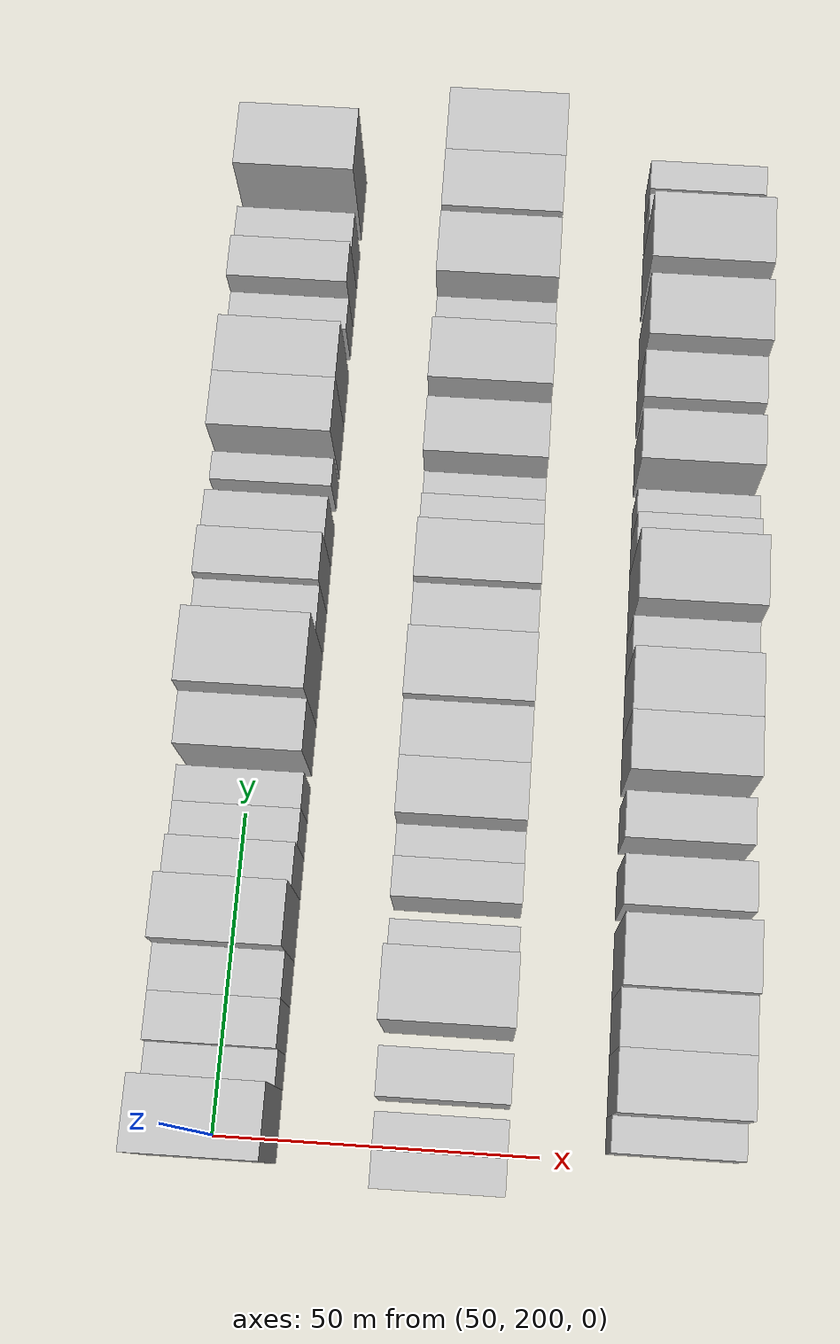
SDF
<sdf version="1.6">
 <world name="default">
  <model name="building_60">
   <static>1</static>
   <pose>50.0000 201.9359 0 0.000000 0.000000 0.000000</pose>
   <link name="link">
    <pose>0 0 12.00 0 0 0</pose>
    <collision name="collision"><geometry><box><size>20.0000 10.8828 24.0000</size></box></geometry></collision>
    <visual name="visual">
     <cast_shadows>0</cast_shadows>
     <geometry><box><size>20.0000 10.8828 24.0000</size></box></geometry>
     <material>
      <script>
       <uri>model://HANNAS_wall/materials/scripts</uri>
       <uri>model://HANNAS_wall/materials/textures</uri>
       <name>vrc/HANNAS_wall</name>
      </script>
     </material>
    </visual>
   </link>
  </model>
  <model name="building_61">
   <static>1</static>
   <pose>50.0000 210.0029 0 0.000000 0.000000 0.000000</pose>
   <link name="link">
    <pose>0 0 6.00 0 0 0</pose>
    <collision name="collision"><geometry><box><size>20.0000 5.2511 12.0000</size></box></geometry></collision>
    <visual name="visual">
     <cast_shadows>0</cast_shadows>
     <geometry><box><size>20.0000 5.2511 12.0000</size></box></geometry>
     <material>
      <script>
       <uri>model://HANNAS_wall/materials/scripts</uri>
       <uri>model://HANNAS_wall/materials/textures</uri>
       <name>vrc/HANNAS_wall</name>
      </script>
     </material>
    </visual>
   </link>
  </model>
  <model name="building_62">
   <static>1</static>
   <pose>50.0000 216.2365 0 0.000000 0.000000 0.000000</pose>
   <link name="link">
    <pose>0 0 7.50 0 0 0</pose>
    <collision name="collision"><geometry><box><size>20.0000 7.2160 15.0000</size></box></geometry></collision>
    <visual name="visual">
     <cast_shadows>0</cast_shadows>
     <geometry><box><size>20.0000 7.2160 15.0000</size></box></geometry>
     <material>
      <script>
       <uri>model://HANNAS_wall/materials/scripts</uri>
       <uri>model://HANNAS_wall/materials/textures</uri>
       <name>vrc/HANNAS_wall</name>
      </script>
     </material>
    </visual>
   </link>
  </model>
  <model name="building_63">
   <static>1</static>
   <pose>50.0000 223.3515 0 0.000000 0.000000 0.000000</pose>
   <link name="link">
    <pose>0 0 7.50 0 0 0</pose>
    <collision name="collision"><geometry><box><size>20.0000 7.0141 15.0000</size></box></geometry></collision>
    <visual name="visual">
     <cast_shadows>0</cast_shadows>
     <geometry><box><size>20.0000 7.0141 15.0000</size></box></geometry>
     <material>
      <script>
       <uri>model://HANNAS_wall/materials/scripts</uri>
       <uri>model://HANNAS_wall/materials/textures</uri>
       <name>vrc/HANNAS_wall</name>
      </script>
     </material>
    </visual>
   </link>
  </model>
  <model name="building_64">
   <static>1</static>
   <pose>50.0000 231.7154 0 0.000000 0.000000 0.000000</pose>
   <link name="link">
    <pose>0 0 10.50 0 0 0</pose>
    <collision name="collision"><geometry><box><size>20.0000 9.7138 21.0000</size></box></geometry></collision>
    <visual name="visual">
     <cast_shadows>0</cast_shadows>
     <geometry><box><size>20.0000 9.7138 21.0000</size></box></geometry>
     <material>
      <script>
       <uri>model://HANNAS_wall/materials/scripts</uri>
       <uri>model://HANNAS_wall/materials/textures</uri>
       <name>vrc/HANNAS_wall</name>
      </script>
     </material>
    </visual>
   </link>
  </model>
  <model name="building_65">
   <static>1</static>
   <pose>50.0000 239.9310 0 0.000000 0.000000 0.000000</pose>
   <link name="link">
    <pose>0 0 7.50 0 0 0</pose>
    <collision name="collision"><geometry><box><size>20.0000 6.7175 15.0000</size></box></geometry></collision>
    <visual name="visual">
     <cast_shadows>0</cast_shadows>
     <geometry><box><size>20.0000 6.7175 15.0000</size></box></geometry>
     <material>
      <script>
       <uri>model://HANNAS_wall/materials/scripts</uri>
       <uri>model://HANNAS_wall/materials/textures</uri>
       <name>vrc/HANNAS_wall</name>
      </script>
     </material>
    </visual>
   </link>
  </model>
  <model name="building_66">
   <static>1</static>
   <pose>50.0000 246.1972 0 0.000000 0.000000 0.000000</pose>
   <link name="link">
    <pose>0 0 6.00 0 0 0</pose>
    <collision name="collision"><geometry><box><size>20.0000 5.8149 12.0000</size></box></geometry></collision>
    <visual name="visual">
     <cast_shadows>0</cast_shadows>
     <geometry><box><size>20.0000 5.8149 12.0000</size></box></geometry>
     <material>
      <script>
       <uri>model://HANNAS_wall/materials/scripts</uri>
       <uri>model://HANNAS_wall/materials/textures</uri>
       <name>vrc/HANNAS_wall</name>
      </script>
     </material>
    </visual>
   </link>
  </model>
  <model name="building_67">
   <static>1</static>
   <pose>50.0000 251.9411 0 0.000000 0.000000 0.000000</pose>
   <link name="link">
    <pose>0 0 6.00 0 0 0</pose>
    <collision name="collision"><geometry><box><size>20.0000 5.6728 12.0000</size></box></geometry></collision>
    <visual name="visual">
     <cast_shadows>0</cast_shadows>
     <geometry><box><size>20.0000 5.6728 12.0000</size></box></geometry>
     <material>
      <script>
       <uri>model://HANNAS_wall/materials/scripts</uri>
       <uri>model://HANNAS_wall/materials/textures</uri>
       <name>vrc/HANNAS_wall</name>
      </script>
     </material>
    </visual>
   </link>
  </model>
  <model name="building_68">
   <static>1</static>
   <pose>50.0000 260.9526 0 0.000000 0.000000 0.000000</pose>
   <link name="link">
    <pose>0 0 9.00 0 0 0</pose>
    <collision name="collision"><geometry><box><size>20.0000 8.3503 18.0000</size></box></geometry></collision>
    <visual name="visual">
     <cast_shadows>0</cast_shadows>
     <geometry><box><size>20.0000 8.3503 18.0000</size></box></geometry>
     <material>
      <script>
       <uri>model://HANNAS_wall/materials/scripts</uri>
       <uri>model://HANNAS_wall/materials/textures</uri>
       <name>vrc/HANNAS_wall</name>
      </script>
     </material>
    </visual>
   </link>
  </model>
  <model name="building_69">
   <static>1</static>
   <pose>50.0000 271.1112 0 0.000000 0.000000 0.000000</pose>
   <link name="link">
    <pose>0 0 12.00 0 0 0</pose>
    <collision name="collision"><geometry><box><size>20.0000 11.9669 24.0000</size></box></geometry></collision>
    <visual name="visual">
     <cast_shadows>0</cast_shadows>
     <geometry><box><size>20.0000 11.9669 24.0000</size></box></geometry>
     <material>
      <script>
       <uri>model://HANNAS_wall/materials/scripts</uri>
       <uri>model://HANNAS_wall/materials/textures</uri>
       <name>vrc/HANNAS_wall</name>
      </script>
     </material>
    </visual>
   </link>
  </model>
  <model name="building_70">
   <static>1</static>
   <pose>50.0000 280.7598 0 0.000000 0.000000 0.000000</pose>
   <link name="link">
    <pose>0 0 7.50 0 0 0</pose>
    <collision name="collision"><geometry><box><size>20.0000 7.3303 15.0000</size></box></geometry></collision>
    <visual name="visual">
     <cast_shadows>0</cast_shadows>
     <geometry><box><size>20.0000 7.3303 15.0000</size></box></geometry>
     <material>
      <script>
       <uri>model://HANNAS_wall/materials/scripts</uri>
       <uri>model://HANNAS_wall/materials/textures</uri>
       <name>vrc/HANNAS_wall</name>
      </script>
     </material>
    </visual>
   </link>
  </model>
  <model name="building_71">
   <static>1</static>
   <pose>50.0000 288.3736 0 0.000000 0.000000 0.000000</pose>
   <link name="link">
    <pose>0 0 9.00 0 0 0</pose>
    <collision name="collision"><geometry><box><size>20.0000 7.8973 18.0000</size></box></geometry></collision>
    <visual name="visual">
     <cast_shadows>0</cast_shadows>
     <geometry><box><size>20.0000 7.8973 18.0000</size></box></geometry>
     <material>
      <script>
       <uri>model://HANNAS_wall/materials/scripts</uri>
       <uri>model://HANNAS_wall/materials/textures</uri>
       <name>vrc/HANNAS_wall</name>
      </script>
     </material>
    </visual>
   </link>
  </model>
  <model name="building_72">
   <static>1</static>
   <pose>50.0000 295.9462 0 0.000000 0.000000 0.000000</pose>
   <link name="link">
    <pose>0 0 7.50 0 0 0</pose>
    <collision name="collision"><geometry><box><size>20.0000 7.2479 15.0000</size></box></geometry></collision>
    <visual name="visual">
     <cast_shadows>0</cast_shadows>
     <geometry><box><size>20.0000 7.2479 15.0000</size></box></geometry>
     <material>
      <script>
       <uri>model://HANNAS_wall/materials/scripts</uri>
       <uri>model://HANNAS_wall/materials/textures</uri>
       <name>vrc/HANNAS_wall</name>
      </script>
     </material>
    </visual>
   </link>
  </model>
  <model name="building_73">
   <static>1</static>
   <pose>50.0000 305.0098 0 0.000000 0.000000 0.000000</pose>
   <link name="link">
    <pose>0 0 6.00 0 0 0</pose>
    <collision name="collision"><geometry><box><size>20.0000 4.8794 12.0000</size></box></geometry></collision>
    <visual name="visual">
     <cast_shadows>0</cast_shadows>
     <geometry><box><size>20.0000 4.8794 12.0000</size></box></geometry>
     <material>
      <script>
       <uri>model://HANNAS_wall/materials/scripts</uri>
       <uri>model://HANNAS_wall/materials/textures</uri>
       <name>vrc/HANNAS_wall</name>
      </script>
     </material>
    </visual>
   </link>
  </model>
  <model name="building_74">
   <static>1</static>
   <pose>50.0000 313.1352 0 0.000000 0.000000 0.000000</pose>
   <link name="link">
    <pose>0 0 10.50 0 0 0</pose>
    <collision name="collision"><geometry><box><size>20.0000 9.3714 21.0000</size></box></geometry></collision>
    <visual name="visual">
     <cast_shadows>0</cast_shadows>
     <geometry><box><size>20.0000 9.3714 21.0000</size></box></geometry>
     <material>
      <script>
       <uri>model://HANNAS_wall/materials/scripts</uri>
       <uri>model://HANNAS_wall/materials/textures</uri>
       <name>vrc/HANNAS_wall</name>
      </script>
     </material>
    </visual>
   </link>
  </model>
  <model name="building_75">
   <static>1</static>
   <pose>50.0000 322.7770 0 0.000000 0.000000 0.000000</pose>
   <link name="link">
    <pose>0 0 10.50 0 0 0</pose>
    <collision name="collision"><geometry><box><size>20.0000 9.9121 21.0000</size></box></geometry></collision>
    <visual name="visual">
     <cast_shadows>0</cast_shadows>
     <geometry><box><size>20.0000 9.9121 21.0000</size></box></geometry>
     <material>
      <script>
       <uri>model://HANNAS_wall/materials/scripts</uri>
       <uri>model://HANNAS_wall/materials/textures</uri>
       <name>vrc/HANNAS_wall</name>
      </script>
     </material>
    </visual>
   </link>
  </model>
  <model name="building_76">
   <static>1</static>
   <pose>50.0000 333.6040 0 0.000000 0.000000 0.000000</pose>
   <link name="link">
    <pose>0 0 6.00 0 0 0</pose>
    <collision name="collision"><geometry><box><size>20.0000 5.7421 12.0000</size></box></geometry></collision>
    <visual name="visual">
     <cast_shadows>0</cast_shadows>
     <geometry><box><size>20.0000 5.7421 12.0000</size></box></geometry>
     <material>
      <script>
       <uri>model://HANNAS_wall/materials/scripts</uri>
       <uri>model://HANNAS_wall/materials/textures</uri>
       <name>vrc/HANNAS_wall</name>
      </script>
     </material>
    </visual>
   </link>
  </model>
  <model name="building_77">
   <static>1</static>
   <pose>50.0000 340.1757 0 0.000000 0.000000 0.000000</pose>
   <link name="link">
    <pose>0 0 9.00 0 0 0</pose>
    <collision name="collision"><geometry><box><size>20.0000 7.4012 18.0000</size></box></geometry></collision>
    <visual name="visual">
     <cast_shadows>0</cast_shadows>
     <geometry><box><size>20.0000 7.4012 18.0000</size></box></geometry>
     <material>
      <script>
       <uri>model://HANNAS_wall/materials/scripts</uri>
       <uri>model://HANNAS_wall/materials/textures</uri>
       <name>vrc/HANNAS_wall</name>
      </script>
     </material>
    </visual>
   </link>
  </model>
  <model name="building_78">
   <static>1</static>
   <pose>50.0000 347.4239 0 0.000000 0.000000 0.000000</pose>
   <link name="link">
    <pose>0 0 7.50 0 0 0</pose>
    <collision name="collision"><geometry><box><size>20.0000 7.0953 15.0000</size></box></geometry></collision>
    <visual name="visual">
     <cast_shadows>0</cast_shadows>
     <geometry><box><size>20.0000 7.0953 15.0000</size></box></geometry>
     <material>
      <script>
       <uri>model://HANNAS_wall/materials/scripts</uri>
       <uri>model://HANNAS_wall/materials/textures</uri>
       <name>vrc/HANNAS_wall</name>
      </script>
     </material>
    </visual>
   </link>
  </model>
  <model name="building_79">
   <static>1</static>
   <pose>50.0000 359.7426 0 0.000000 0.000000 0.000000</pose>
   <link name="link">
    <pose>0 0 12.00 0 0 0</pose>
    <collision name="collision"><geometry><box><size>20.0000 11.5420 24.0000</size></box></geometry></collision>
    <visual name="visual">
     <cast_shadows>0</cast_shadows>
     <geometry><box><size>20.0000 11.5420 24.0000</size></box></geometry>
     <material>
      <script>
       <uri>model://HANNAS_wall/materials/scripts</uri>
       <uri>model://HANNAS_wall/materials/textures</uri>
       <name>vrc/HANNAS_wall</name>
      </script>
     </material>
    </visual>
   </link>
  </model>
  <model name="building_129">
   <static>1</static>
   <pose>85.0000 196.6159 0 0.000000 0.000000 0.000000</pose>
   <link name="link">
    <pose>0 0 6.00 0 0 0</pose>
    <collision name="collision"><geometry><box><size>20.0000 5.4225 12.0000</size></box></geometry></collision>
    <visual name="visual">
     <cast_shadows>0</cast_shadows>
     <geometry><box><size>20.0000 5.4225 12.0000</size></box></geometry>
     <material>
      <script>
       <uri>model://HANNAS_wall/materials/scripts</uri>
       <uri>model://HANNAS_wall/materials/textures</uri>
       <name>vrc/HANNAS_wall</name>
      </script>
     </material>
    </visual>
   </link>
  </model>
  <model name="building_130">
   <static>1</static>
   <pose>85.0000 202.0623 0 0.000000 0.000000 0.000000</pose>
   <link name="link">
    <pose>0 0 6.00 0 0 0</pose>
    <collision name="collision"><geometry><box><size>20.0000 5.4703 12.0000</size></box></geometry></collision>
    <visual name="visual">
     <cast_shadows>0</cast_shadows>
     <geometry><box><size>20.0000 5.4703 12.0000</size></box></geometry>
     <material>
      <script>
       <uri>model://HANNAS_wall/materials/scripts</uri>
       <uri>model://HANNAS_wall/materials/textures</uri>
       <name>vrc/HANNAS_wall</name>
      </script>
     </material>
    </visual>
   </link>
  </model>
  <model name="building_131">
   <static>1</static>
   <pose>85.0000 210.4337 0 0.000000 0.000000 0.000000</pose>
   <link name="link">
    <pose>0 0 7.50 0 0 0</pose>
    <collision name="collision"><geometry><box><size>20.0000 7.2725 15.0000</size></box></geometry></collision>
    <visual name="visual">
     <cast_shadows>0</cast_shadows>
     <geometry><box><size>20.0000 7.2725 15.0000</size></box></geometry>
     <material>
      <script>
       <uri>model://HANNAS_wall/materials/scripts</uri>
       <uri>model://HANNAS_wall/materials/textures</uri>
       <name>vrc/HANNAS_wall</name>
      </script>
     </material>
    </visual>
   </link>
  </model>
  <model name="building_132">
   <static>1</static>
   <pose>85.0000 222.4477 0 0.000000 0.000000 0.000000</pose>
   <link name="link">
    <pose>0 0 12.00 0 0 0</pose>
    <collision name="collision"><geometry><box><size>20.0000 10.7555 24.0000</size></box></geometry></collision>
    <visual name="visual">
     <cast_shadows>0</cast_shadows>
     <geometry><box><size>20.0000 10.7555 24.0000</size></box></geometry>
     <material>
      <script>
       <uri>model://HANNAS_wall/materials/scripts</uri>
       <uri>model://HANNAS_wall/materials/textures</uri>
       <name>vrc/HANNAS_wall</name>
      </script>
     </material>
    </visual>
   </link>
  </model>
  <model name="building_133">
   <static>1</static>
   <pose>85.0000 230.4739 0 0.000000 0.000000 0.000000</pose>
   <link name="link">
    <pose>0 0 6.00 0 0 0</pose>
    <collision name="collision"><geometry><box><size>20.0000 5.2968 12.0000</size></box></geometry></collision>
    <visual name="visual">
     <cast_shadows>0</cast_shadows>
     <geometry><box><size>20.0000 5.2968 12.0000</size></box></geometry>
     <material>
      <script>
       <uri>model://HANNAS_wall/materials/scripts</uri>
       <uri>model://HANNAS_wall/materials/textures</uri>
       <name>vrc/HANNAS_wall</name>
      </script>
     </material>
    </visual>
   </link>
  </model>
  <model name="building_134">
   <static>1</static>
   <pose>85.0000 239.1895 0 0.000000 0.000000 0.000000</pose>
   <link name="link">
    <pose>0 0 7.50 0 0 0</pose>
    <collision name="collision"><geometry><box><size>20.0000 6.1344 15.0000</size></box></geometry></collision>
    <visual name="visual">
     <cast_shadows>0</cast_shadows>
     <geometry><box><size>20.0000 6.1344 15.0000</size></box></geometry>
     <material>
      <script>
       <uri>model://HANNAS_wall/materials/scripts</uri>
       <uri>model://HANNAS_wall/materials/textures</uri>
       <name>vrc/HANNAS_wall</name>
      </script>
     </material>
    </visual>
   </link>
  </model>
  <model name="building_135">
   <static>1</static>
   <pose>85.0000 244.9941 0 0.000000 0.000000 0.000000</pose>
   <link name="link">
    <pose>0 0 6.00 0 0 0</pose>
    <collision name="collision"><geometry><box><size>20.0000 5.4748 12.0000</size></box></geometry></collision>
    <visual name="visual">
     <cast_shadows>0</cast_shadows>
     <geometry><box><size>20.0000 5.4748 12.0000</size></box></geometry>
     <material>
      <script>
       <uri>model://HANNAS_wall/materials/scripts</uri>
       <uri>model://HANNAS_wall/materials/textures</uri>
       <name>vrc/HANNAS_wall</name>
      </script>
     </material>
    </visual>
   </link>
  </model>
  <model name="building_136">
   <static>1</static>
   <pose>85.0000 252.1465 0 0.000000 0.000000 0.000000</pose>
   <link name="link">
    <pose>0 0 10.50 0 0 0</pose>
    <collision name="collision"><geometry><box><size>20.0000 8.8299 21.0000</size></box></geometry></collision>
    <visual name="visual">
     <cast_shadows>0</cast_shadows>
     <geometry><box><size>20.0000 8.8299 21.0000</size></box></geometry>
     <material>
      <script>
       <uri>model://HANNAS_wall/materials/scripts</uri>
       <uri>model://HANNAS_wall/materials/textures</uri>
       <name>vrc/HANNAS_wall</name>
      </script>
     </material>
    </visual>
   </link>
  </model>
  <model name="building_137">
   <static>1</static>
   <pose>85.0000 260.9532 0 0.000000 0.000000 0.000000</pose>
   <link name="link">
    <pose>0 0 10.50 0 0 0</pose>
    <collision name="collision"><geometry><box><size>20.0000 8.7836 21.0000</size></box></geometry></collision>
    <visual name="visual">
     <cast_shadows>0</cast_shadows>
     <geometry><box><size>20.0000 8.7836 21.0000</size></box></geometry>
     <material>
      <script>
       <uri>model://HANNAS_wall/materials/scripts</uri>
       <uri>model://HANNAS_wall/materials/textures</uri>
       <name>vrc/HANNAS_wall</name>
      </script>
     </material>
    </visual>
   </link>
  </model>
  <model name="building_138">
   <static>1</static>
   <pose>85.0000 270.7781 0 0.000000 0.000000 0.000000</pose>
   <link name="link">
    <pose>0 0 12.00 0 0 0</pose>
    <collision name="collision"><geometry><box><size>20.0000 10.8662 24.0000</size></box></geometry></collision>
    <visual name="visual">
     <cast_shadows>0</cast_shadows>
     <geometry><box><size>20.0000 10.8662 24.0000</size></box></geometry>
     <material>
      <script>
       <uri>model://HANNAS_wall/materials/scripts</uri>
       <uri>model://HANNAS_wall/materials/textures</uri>
       <name>vrc/HANNAS_wall</name>
      </script>
     </material>
    </visual>
   </link>
  </model>
  <model name="building_139">
   <static>1</static>
   <pose>85.0000 280.6278 0 0.000000 0.000000 0.000000</pose>
   <link name="link">
    <pose>0 0 9.00 0 0 0</pose>
    <collision name="collision"><geometry><box><size>20.0000 8.8332 18.0000</size></box></geometry></collision>
    <visual name="visual">
     <cast_shadows>0</cast_shadows>
     <geometry><box><size>20.0000 8.8332 18.0000</size></box></geometry>
     <material>
      <script>
       <uri>model://HANNAS_wall/materials/scripts</uri>
       <uri>model://HANNAS_wall/materials/textures</uri>
       <name>vrc/HANNAS_wall</name>
      </script>
     </material>
    </visual>
   </link>
  </model>
  <model name="building_140">
   <static>1</static>
   <pose>85.0000 289.9449 0 0.000000 0.000000 0.000000</pose>
   <link name="link">
    <pose>0 0 10.50 0 0 0</pose>
    <collision name="collision"><geometry><box><size>20.0000 9.8008 21.0000</size></box></geometry></collision>
    <visual name="visual">
     <cast_shadows>0</cast_shadows>
     <geometry><box><size>20.0000 9.8008 21.0000</size></box></geometry>
     <material>
      <script>
       <uri>model://HANNAS_wall/materials/scripts</uri>
       <uri>model://HANNAS_wall/materials/textures</uri>
       <name>vrc/HANNAS_wall</name>
      </script>
     </material>
    </visual>
   </link>
  </model>
  <model name="building_141">
   <static>1</static>
   <pose>85.0000 298.0287 0 0.000000 0.000000 0.000000</pose>
   <link name="link">
    <pose>0 0 7.50 0 0 0</pose>
    <collision name="collision"><geometry><box><size>20.0000 6.3668 15.0000</size></box></geometry></collision>
    <visual name="visual">
     <cast_shadows>0</cast_shadows>
     <geometry><box><size>20.0000 6.3668 15.0000</size></box></geometry>
     <material>
      <script>
       <uri>model://HANNAS_wall/materials/scripts</uri>
       <uri>model://HANNAS_wall/materials/textures</uri>
       <name>vrc/HANNAS_wall</name>
      </script>
     </material>
    </visual>
   </link>
  </model>
  <model name="building_142">
   <static>1</static>
   <pose>85.0000 303.6895 0 0.000000 0.000000 0.000000</pose>
   <link name="link">
    <pose>0 0 6.00 0 0 0</pose>
    <collision name="collision"><geometry><box><size>20.0000 4.9549 12.0000</size></box></geometry></collision>
    <visual name="visual">
     <cast_shadows>0</cast_shadows>
     <geometry><box><size>20.0000 4.9549 12.0000</size></box></geometry>
     <material>
      <script>
       <uri>model://HANNAS_wall/materials/scripts</uri>
       <uri>model://HANNAS_wall/materials/textures</uri>
       <name>vrc/HANNAS_wall</name>
      </script>
     </material>
    </visual>
   </link>
  </model>
  <model name="building_143">
   <static>1</static>
   <pose>85.0000 310.8804 0 0.000000 0.000000 0.000000</pose>
   <link name="link">
    <pose>0 0 10.50 0 0 0</pose>
    <collision name="collision"><geometry><box><size>20.0000 9.4268 21.0000</size></box></geometry></collision>
    <visual name="visual">
     <cast_shadows>0</cast_shadows>
     <geometry><box><size>20.0000 9.4268 21.0000</size></box></geometry>
     <material>
      <script>
       <uri>model://HANNAS_wall/materials/scripts</uri>
       <uri>model://HANNAS_wall/materials/textures</uri>
       <name>vrc/HANNAS_wall</name>
      </script>
     </material>
    </visual>
   </link>
  </model>
  <model name="building_144">
   <static>1</static>
   <pose>85.0000 322.8566 0 0.000000 0.000000 0.000000</pose>
   <link name="link">
    <pose>0 0 12.00 0 0 0</pose>
    <collision name="collision"><geometry><box><size>20.0000 10.5258 24.0000</size></box></geometry></collision>
    <visual name="visual">
     <cast_shadows>0</cast_shadows>
     <geometry><box><size>20.0000 10.5258 24.0000</size></box></geometry>
     <material>
      <script>
       <uri>model://HANNAS_wall/materials/scripts</uri>
       <uri>model://HANNAS_wall/materials/textures</uri>
       <name>vrc/HANNAS_wall</name>
      </script>
     </material>
    </visual>
   </link>
  </model>
  <model name="building_145">
   <static>1</static>
   <pose>85.0000 332.7528 0 0.000000 0.000000 0.000000</pose>
   <link name="link">
    <pose>0 0 7.50 0 0 0</pose>
    <collision name="collision"><geometry><box><size>20.0000 7.2665 15.0000</size></box></geometry></collision>
    <visual name="visual">
     <cast_shadows>0</cast_shadows>
     <geometry><box><size>20.0000 7.2665 15.0000</size></box></geometry>
     <material>
      <script>
       <uri>model://HANNAS_wall/materials/scripts</uri>
       <uri>model://HANNAS_wall/materials/textures</uri>
       <name>vrc/HANNAS_wall</name>
      </script>
     </material>
    </visual>
   </link>
  </model>
  <model name="building_146">
   <static>1</static>
   <pose>85.0000 341.8696 0 0.000000 0.000000 0.000000</pose>
   <link name="link">
    <pose>0 0 12.00 0 0 0</pose>
    <collision name="collision"><geometry><box><size>20.0000 10.9670 24.0000</size></box></geometry></collision>
    <visual name="visual">
     <cast_shadows>0</cast_shadows>
     <geometry><box><size>20.0000 10.9670 24.0000</size></box></geometry>
     <material>
      <script>
       <uri>model://HANNAS_wall/materials/scripts</uri>
       <uri>model://HANNAS_wall/materials/textures</uri>
       <name>vrc/HANNAS_wall</name>
      </script>
     </material>
    </visual>
   </link>
  </model>
  <model name="building_147">
   <static>1</static>
   <pose>85.0000 353.6257 0 0.000000 0.000000 0.000000</pose>
   <link name="link">
    <pose>0 0 12.00 0 0 0</pose>
    <collision name="collision"><geometry><box><size>20.0000 10.5453 24.0000</size></box></geometry></collision>
    <visual name="visual">
     <cast_shadows>0</cast_shadows>
     <geometry><box><size>20.0000 10.5453 24.0000</size></box></geometry>
     <material>
      <script>
       <uri>model://HANNAS_wall/materials/scripts</uri>
       <uri>model://HANNAS_wall/materials/textures</uri>
       <name>vrc/HANNAS_wall</name>
      </script>
     </material>
    </visual>
   </link>
  </model>
  <model name="building_148">
   <static>1</static>
   <pose>85.0000 364.7622 0 0.000000 0.000000 0.000000</pose>
   <link name="link">
    <pose>0 0 12.00 0 0 0</pose>
    <collision name="collision"><geometry><box><size>20.0000 11.7276 24.0000</size></box></geometry></collision>
    <visual name="visual">
     <cast_shadows>0</cast_shadows>
     <geometry><box><size>20.0000 11.7276 24.0000</size></box></geometry>
     <material>
      <script>
       <uri>model://HANNAS_wall/materials/scripts</uri>
       <uri>model://HANNAS_wall/materials/textures</uri>
       <name>vrc/HANNAS_wall</name>
      </script>
     </material>
    </visual>
   </link>
  </model>
  <model name="building_214">
   <static>1</static>
   <pose>120.0000 203.7898 0 0.000000 0.000000 0.000000</pose>
   <link name="link">
    <pose>0 0 6.00 0 0 0</pose>
    <collision name="collision"><geometry><box><size>20.0000 5.3948 12.0000</size></box></geometry></collision>
    <visual name="visual">
     <cast_shadows>0</cast_shadows>
     <geometry><box><size>20.0000 5.3948 12.0000</size></box></geometry>
     <material>
      <script>
       <uri>model://HANNAS_wall/materials/scripts</uri>
       <uri>model://HANNAS_wall/materials/textures</uri>
       <name>vrc/HANNAS_wall</name>
      </script>
     </material>
    </visual>
   </link>
  </model>
  <model name="building_215">
   <static>1</static>
   <pose>120.0000 211.0895 0 0.000000 0.000000 0.000000</pose>
   <link name="link">
    <pose>0 0 10.50 0 0 0</pose>
    <collision name="collision"><geometry><box><size>20.0000 9.2046 21.0000</size></box></geometry></collision>
    <visual name="visual">
     <cast_shadows>0</cast_shadows>
     <geometry><box><size>20.0000 9.2046 21.0000</size></box></geometry>
     <material>
      <script>
       <uri>model://HANNAS_wall/materials/scripts</uri>
       <uri>model://HANNAS_wall/materials/textures</uri>
       <name>vrc/HANNAS_wall</name>
      </script>
     </material>
    </visual>
   </link>
  </model>
  <model name="building_216">
   <static>1</static>
   <pose>120.0000 219.9344 0 0.000000 0.000000 0.000000</pose>
   <link name="link">
    <pose>0 0 10.50 0 0 0</pose>
    <collision name="collision"><geometry><box><size>20.0000 8.4852 21.0000</size></box></geometry></collision>
    <visual name="visual">
     <cast_shadows>0</cast_shadows>
     <geometry><box><size>20.0000 8.4852 21.0000</size></box></geometry>
     <material>
      <script>
       <uri>model://HANNAS_wall/materials/scripts</uri>
       <uri>model://HANNAS_wall/materials/textures</uri>
       <name>vrc/HANNAS_wall</name>
      </script>
     </material>
    </visual>
   </link>
  </model>
  <model name="building_217">
   <static>1</static>
   <pose>120.0000 229.4382 0 0.000000 0.000000 0.000000</pose>
   <link name="link">
    <pose>0 0 12.00 0 0 0</pose>
    <collision name="collision"><geometry><box><size>20.0000 10.5223 24.0000</size></box></geometry></collision>
    <visual name="visual">
     <cast_shadows>0</cast_shadows>
     <geometry><box><size>20.0000 10.5223 24.0000</size></box></geometry>
     <material>
      <script>
       <uri>model://HANNAS_wall/materials/scripts</uri>
       <uri>model://HANNAS_wall/materials/textures</uri>
       <name>vrc/HANNAS_wall</name>
      </script>
     </material>
    </visual>
   </link>
  </model>
  <model name="building_218">
   <static>1</static>
   <pose>120.0000 240.5228 0 0.000000 0.000000 0.000000</pose>
   <link name="link">
    <pose>0 0 9.00 0 0 0</pose>
    <collision name="collision"><geometry><box><size>20.0000 7.6469 18.0000</size></box></geometry></collision>
    <visual name="visual">
     <cast_shadows>0</cast_shadows>
     <geometry><box><size>20.0000 7.6469 18.0000</size></box></geometry>
     <material>
      <script>
       <uri>model://HANNAS_wall/materials/scripts</uri>
       <uri>model://HANNAS_wall/materials/textures</uri>
       <name>vrc/HANNAS_wall</name>
      </script>
     </material>
    </visual>
   </link>
  </model>
  <model name="building_219">
   <static>1</static>
   <pose>120.0000 250.9979 0 0.000000 0.000000 0.000000</pose>
   <link name="link">
    <pose>0 0 7.50 0 0 0</pose>
    <collision name="collision"><geometry><box><size>20.0000 7.3033 15.0000</size></box></geometry></collision>
    <visual name="visual">
     <cast_shadows>0</cast_shadows>
     <geometry><box><size>20.0000 7.3033 15.0000</size></box></geometry>
     <material>
      <script>
       <uri>model://HANNAS_wall/materials/scripts</uri>
       <uri>model://HANNAS_wall/materials/textures</uri>
       <name>vrc/HANNAS_wall</name>
      </script>
     </material>
    </visual>
   </link>
  </model>
  <model name="building_220">
   <static>1</static>
   <pose>120.0000 261.3176 0 0.000000 0.000000 0.000000</pose>
   <link name="link">
    <pose>0 0 10.50 0 0 0</pose>
    <collision name="collision"><geometry><box><size>20.0000 9.3362 21.0000</size></box></geometry></collision>
    <visual name="visual">
     <cast_shadows>0</cast_shadows>
     <geometry><box><size>20.0000 9.3362 21.0000</size></box></geometry>
     <material>
      <script>
       <uri>model://HANNAS_wall/materials/scripts</uri>
       <uri>model://HANNAS_wall/materials/textures</uri>
       <name>vrc/HANNAS_wall</name>
      </script>
     </material>
    </visual>
   </link>
  </model>
  <model name="building_221">
   <static>1</static>
   <pose>120.0000 271.0208 0 0.000000 0.000000 0.000000</pose>
   <link name="link">
    <pose>0 0 10.50 0 0 0</pose>
    <collision name="collision"><geometry><box><size>20.0000 10.0701 21.0000</size></box></geometry></collision>
    <visual name="visual">
     <cast_shadows>0</cast_shadows>
     <geometry><box><size>20.0000 10.0701 21.0000</size></box></geometry>
     <material>
      <script>
       <uri>model://HANNAS_wall/materials/scripts</uri>
       <uri>model://HANNAS_wall/materials/textures</uri>
       <name>vrc/HANNAS_wall</name>
      </script>
     </material>
    </visual>
   </link>
  </model>
  <model name="building_222">
   <static>1</static>
   <pose>120.0000 279.4205 0 0.000000 0.000000 0.000000</pose>
   <link name="link">
    <pose>0 0 7.50 0 0 0</pose>
    <collision name="collision"><geometry><box><size>20.0000 6.7293 15.0000</size></box></geometry></collision>
    <visual name="visual">
     <cast_shadows>0</cast_shadows>
     <geometry><box><size>20.0000 6.7293 15.0000</size></box></geometry>
     <material>
      <script>
       <uri>model://HANNAS_wall/materials/scripts</uri>
       <uri>model://HANNAS_wall/materials/textures</uri>
       <name>vrc/HANNAS_wall</name>
      </script>
     </material>
    </visual>
   </link>
  </model>
  <model name="building_223">
   <static>1</static>
   <pose>120.0000 288.5257 0 0.000000 0.000000 0.000000</pose>
   <link name="link">
    <pose>0 0 12.00 0 0 0</pose>
    <collision name="collision"><geometry><box><size>20.0000 11.4810 24.0000</size></box></geometry></collision>
    <visual name="visual">
     <cast_shadows>0</cast_shadows>
     <geometry><box><size>20.0000 11.4810 24.0000</size></box></geometry>
     <material>
      <script>
       <uri>model://HANNAS_wall/materials/scripts</uri>
       <uri>model://HANNAS_wall/materials/textures</uri>
       <name>vrc/HANNAS_wall</name>
      </script>
     </material>
    </visual>
   </link>
  </model>
  <model name="building_224">
   <static>1</static>
   <pose>120.0000 297.2767 0 0.000000 0.000000 0.000000</pose>
   <link name="link">
    <pose>0 0 7.50 0 0 0</pose>
    <collision name="collision"><geometry><box><size>20.0000 6.0209 15.0000</size></box></geometry></collision>
    <visual name="visual">
     <cast_shadows>0</cast_shadows>
     <geometry><box><size>20.0000 6.0209 15.0000</size></box></geometry>
     <material>
      <script>
       <uri>model://HANNAS_wall/materials/scripts</uri>
       <uri>model://HANNAS_wall/materials/textures</uri>
       <name>vrc/HANNAS_wall</name>
      </script>
     </material>
    </visual>
   </link>
  </model>
  <model name="building_225">
   <static>1</static>
   <pose>120.0000 302.8234 0 0.000000 0.000000 0.000000</pose>
   <link name="link">
    <pose>0 0 6.00 0 0 0</pose>
    <collision name="collision"><geometry><box><size>20.0000 5.0725 12.0000</size></box></geometry></collision>
    <visual name="visual">
     <cast_shadows>0</cast_shadows>
     <geometry><box><size>20.0000 5.0725 12.0000</size></box></geometry>
     <material>
      <script>
       <uri>model://HANNAS_wall/materials/scripts</uri>
       <uri>model://HANNAS_wall/materials/textures</uri>
       <name>vrc/HANNAS_wall</name>
      </script>
     </material>
    </visual>
   </link>
  </model>
  <model name="building_226">
   <static>1</static>
   <pose>120.0000 312.7203 0 0.000000 0.000000 0.000000</pose>
   <link name="link">
    <pose>0 0 9.00 0 0 0</pose>
    <collision name="collision"><geometry><box><size>20.0000 8.7213 18.0000</size></box></geometry></collision>
    <visual name="visual">
     <cast_shadows>0</cast_shadows>
     <geometry><box><size>20.0000 8.7213 18.0000</size></box></geometry>
     <material>
      <script>
       <uri>model://HANNAS_wall/materials/scripts</uri>
       <uri>model://HANNAS_wall/materials/textures</uri>
       <name>vrc/HANNAS_wall</name>
      </script>
     </material>
    </visual>
   </link>
  </model>
  <model name="building_227">
   <static>1</static>
   <pose>120.0000 323.2605 0 0.000000 0.000000 0.000000</pose>
   <link name="link">
    <pose>0 0 9.00 0 0 0</pose>
    <collision name="collision"><geometry><box><size>20.0000 8.3591 18.0000</size></box></geometry></collision>
    <visual name="visual">
     <cast_shadows>0</cast_shadows>
     <geometry><box><size>20.0000 8.3591 18.0000</size></box></geometry>
     <material>
      <script>
       <uri>model://HANNAS_wall/materials/scripts</uri>
       <uri>model://HANNAS_wall/materials/textures</uri>
       <name>vrc/HANNAS_wall</name>
      </script>
     </material>
    </visual>
   </link>
  </model>
  <model name="building_228">
   <static>1</static>
   <pose>120.0000 332.8686 0 0.000000 0.000000 0.000000</pose>
   <link name="link">
    <pose>0 0 12.00 0 0 0</pose>
    <collision name="collision"><geometry><box><size>20.0000 10.8572 24.0000</size></box></geometry></collision>
    <visual name="visual">
     <cast_shadows>0</cast_shadows>
     <geometry><box><size>20.0000 10.8572 24.0000</size></box></geometry>
     <material>
      <script>
       <uri>model://HANNAS_wall/materials/scripts</uri>
       <uri>model://HANNAS_wall/materials/textures</uri>
       <name>vrc/HANNAS_wall</name>
      </script>
     </material>
    </visual>
   </link>
  </model>
  <model name="building_229">
   <static>1</static>
   <pose>120.0000 347.2722 0 0.000000 0.000000 0.000000</pose>
   <link name="link">
    <pose>0 0 12.00 0 0 0</pose>
    <collision name="collision"><geometry><box><size>20.0000 11.9499 24.0000</size></box></geometry></collision>
    <visual name="visual">
     <cast_shadows>0</cast_shadows>
     <geometry><box><size>20.0000 11.9499 24.0000</size></box></geometry>
     <material>
      <script>
       <uri>model://HANNAS_wall/materials/scripts</uri>
       <uri>model://HANNAS_wall/materials/textures</uri>
       <name>vrc/HANNAS_wall</name>
      </script>
     </material>
    </visual>
   </link>
  </model>
  <model name="building_230">
   <static>1</static>
   <pose>120.0000 356.9679 0 0.000000 0.000000 0.000000</pose>
   <link name="link">
    <pose>0 0 6.00 0 0 0</pose>
    <collision name="collision"><geometry><box><size>20.0000 5.4414 12.0000</size></box></geometry></collision>
    <visual name="visual">
     <cast_shadows>0</cast_shadows>
     <geometry><box><size>20.0000 5.4414 12.0000</size></box></geometry>
     <material>
      <script>
       <uri>model://HANNAS_wall/materials/scripts</uri>
       <uri>model://HANNAS_wall/materials/textures</uri>
       <name>vrc/HANNAS_wall</name>
      </script>
     </material>
    </visual>
   </link>
  </model>
  <model name="building_231">
   <static>1</static>
   <pose>120.0000 363.4227 0 0.000000 0.000000 0.000000</pose>
   <link name="link">
    <pose>0 0 6.00 0 0 0</pose>
    <collision name="collision"><geometry><box><size>20.0000 5.4683 12.0000</size></box></geometry></collision>
    <visual name="visual">
     <cast_shadows>0</cast_shadows>
     <geometry><box><size>20.0000 5.4683 12.0000</size></box></geometry>
     <material>
      <script>
       <uri>model://HANNAS_wall/materials/scripts</uri>
       <uri>model://HANNAS_wall/materials/textures</uri>
       <name>vrc/HANNAS_wall</name>
      </script>
     </material>
    </visual>
   </link>
  </model>
 </world>
</sdf>
